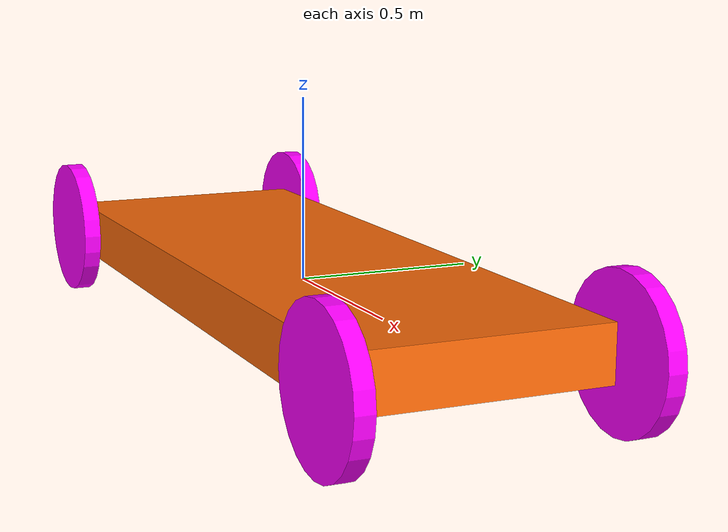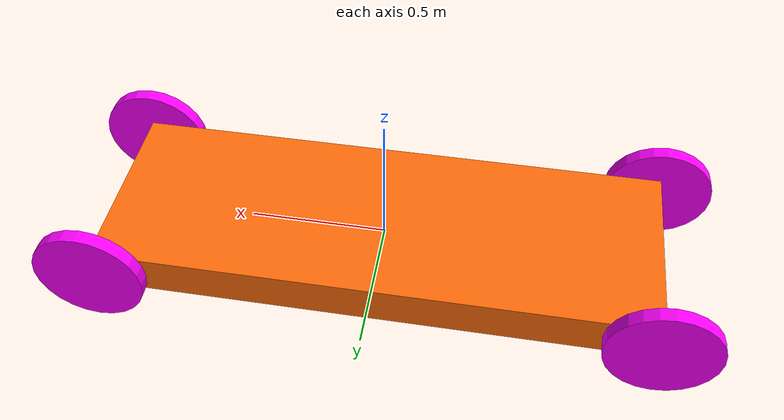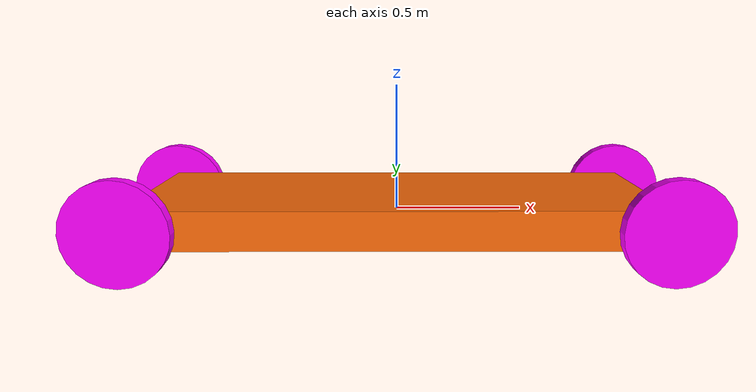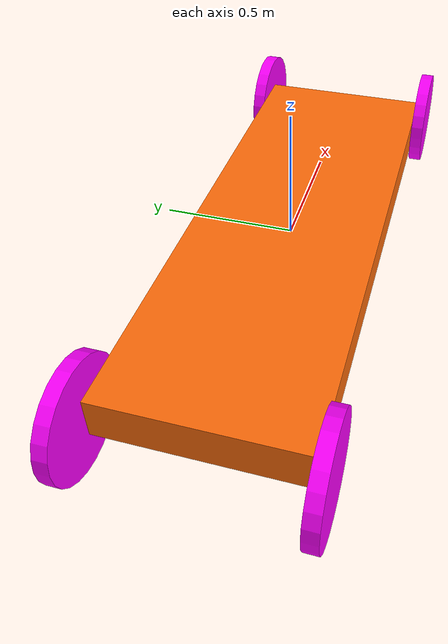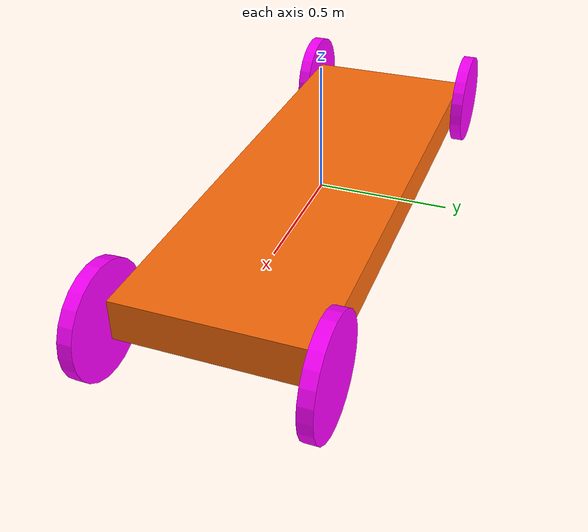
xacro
<?xml version="1.0"?>

<robot name="killer_robot" xmlns:xacro = "https://www.ros.org/wiki/xacro">
    <link name="chassis">

        <inertial>
            <origin xyz="0 0 0.25" rpy="0 0 0"/>
            <mass value="10"/>
            <inertia ixx="0.046875" ixy="0" ixz="0" iyy="0.11354" iyz="0" izz="0.14167"/>
        </inertial>

        <collision name = "chassis_collision">
            <origin xyz="0.0 0.0 0.0" rpy="0.0 0.0 0.0"/>
            <geometry>
                <box size="2 0.7 0.15"/>
            </geometry>
        </collision>

        <visual>
            <origin xyz="0.0 0.0 0.0" rpy="0.0 0.0 0.0"/>
            <geometry>
                <box size="2 0.7 0.15"/>
            </geometry>
            <material name="orange">
                <color rgba="${255/255} ${108/255} ${10/255} 1.0"/>
            </material>
        </visual>
    </link>

    <xacro:include filename="$(find exp10-robot)/urdf/macros.xacro"/>

    <xacro:wheel_link link_name="front_right"/>
    <xacro:wheel_link link_name="front_left"/>
    <xacro:wheel_link link_name="back_right"/>
    <xacro:wheel_link link_name="back_left"/>

    <xacro:joint_link joint_name="front_right_joint" child="front_right" origin_xyz="1 0.375 0"/>
    <xacro:joint_link joint_name="front_left_joint"  child="front_left"  origin_xyz="1 -0.375 0"/>
    <xacro:joint_link joint_name="back_left_joint"   child="back_left"   origin_xyz="-1 0.375 0"/>
    <xacro:joint_link joint_name="back_right_joint"  child="back_right"  origin_xyz="-1 -0.375 0"/>

    <xacro:include filename='$(find exp10-robot)/urdf/materials.xacro'/>

</robot>

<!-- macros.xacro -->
<robot name="killer_robot"  xmlns:xacro="http://www.ros.org/wiki/xacro">

    <xacro:macro name='wheel_link' params='link_name'>
        <link name="${link_name}">
            <inertial>
                <origin xyz="0 0 0" rpy="0 1.57 1.57"/>
                <mass value="0.2"/>
                <inertia ixx="0.0005417" ixy="0" ixz="0" iyy="0.0005417" iyz="0" izz="0.001"/>
            </inertial>

            <collision>
                <origin xyz="0 0 0" rpy="0 1.57 1.57"/>
                <geometry>
                    <cylinder radius="0.2" length="0.05"/>
                </geometry>
            </collision>

            <visual>
                <origin xyz="0 0 0" rpy="0 1.57 1.57"/>
                <geometry>
                    <cylinder radius="0.2" length="0.05"/>
                </geometry>
                <material name="red">
                    <color rgba="1 0 1 1"/>
                </material>
            </visual>
        </link>
    </xacro:macro>

    <xacro:macro name='joint_link' params='joint_name child origin_xyz'>
        <joint name="${joint_name}" type="continuous">
            <origin xyz="${origin_xyz}" rpy="0 0 0"/>
            <parent link="chassis"/>
            <child link="${child}"/>
            <axis xyz="0 1 0"/>
        </joint>
    </xacro:macro>
</robot>
